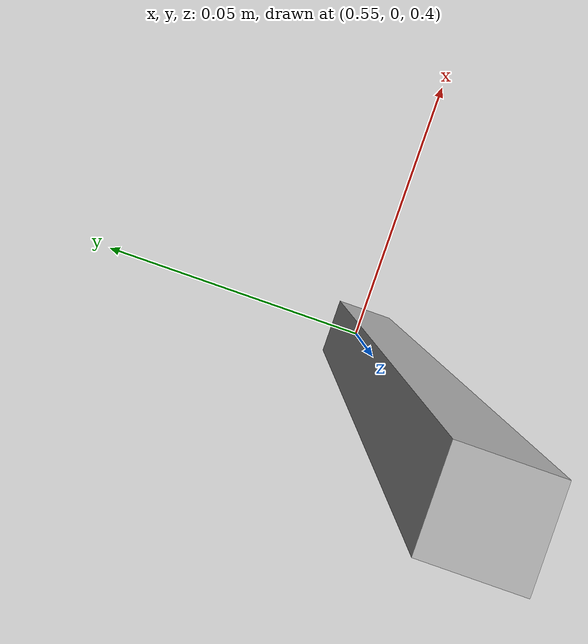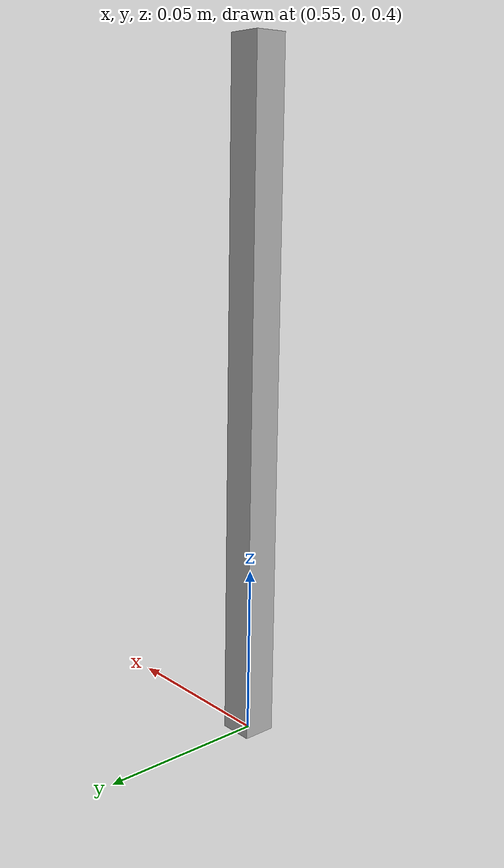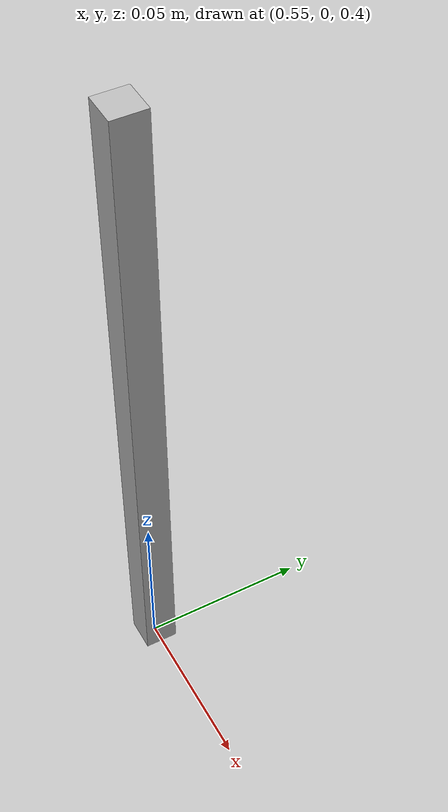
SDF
<sdf version="1.6">
    <world name="default">

        <!-- Define the Table -->
        <model name="cube">
            <pose>0.55 0 0.5 0 0 0</pose> <!-- x y z roll pitch yaw -->
            <static>false</static> <!-- The cube can be moved -->
            <link name="link">
                <collision name="collision">
                    <geometry>
                        <box>
                            <size>0.01 0.01 0.2</size> <!-- Size of the cube -->
                        </box>
                    </geometry>
                </collision>
                <visual name="visual">
                    <geometry>
                        <box>
                            <size>0.01 0.01 0.2</size> <!-- Size of the cube -->
                        </box>
                    </geometry>
                </visual>
            </link>
        </model>

    </world>
</sdf>
